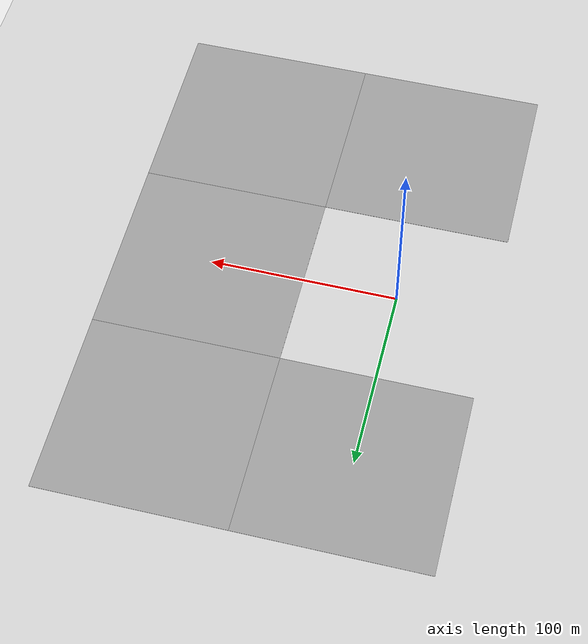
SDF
<sdf version="1.6">
 <world name="default">
  <model name="ground_plane">
   <static>1</static>
   <link name="link">
    <collision name="collision">
     <geometry><plane><normal>0 0 1</normal><size>100 100</size></plane></geometry>
     <surface>
      <contact><collide_bitmask>65535</collide_bitmask></contact>
      <friction><ode><mu>100</mu><mu2>50</mu2></ode></friction>
     </surface>
    </collision>
    <visual name="visual">
     <cast_shadows>0</cast_shadows>
     <geometry><plane><normal>0 0 1</normal><size>100 100</size></plane></geometry>
     <material>
      <script><uri>file://media/materials/scripts/gazebo.material</uri><name>Gazebo/Grey</name></script>
     </material>
    </visual>
   </link>
  </model>
  <model name="ground_plane_0">
   <static>1</static>
   <link name="link">
    <collision name="collision">
     <geometry><plane><normal>0 0 1</normal><size>100 100</size></plane></geometry>
     <surface>
      <contact><collide_bitmask>65535</collide_bitmask></contact>
      <friction><ode><mu>100</mu><mu2>50</mu2></ode></friction>
     </surface>
    </collision>
    <visual name="visual">
     <cast_shadows>0</cast_shadows>
     <geometry><plane><normal>0 0 1</normal><size>100 100</size></plane></geometry>
     <material>
      <script><uri>file://media/materials/scripts/gazebo.material</uri><name>Gazebo/Grey</name></script>
     </material>
    </visual>
   </link>
   <pose>0 -100 0 0 -0 0</pose>
  </model>
  <model name="ground_plane_1">
   <static>1</static>
   <link name="link">
    <collision name="collision">
     <geometry><plane><normal>0 0 1</normal><size>100 100</size></plane></geometry>
     <surface>
      <contact><collide_bitmask>65535</collide_bitmask></contact>
      <friction><ode><mu>100</mu><mu2>50</mu2></ode></friction>
     </surface>
    </collision>
    <visual name="visual">
     <cast_shadows>0</cast_shadows>
     <geometry><plane><normal>0 0 1</normal><size>100 100</size></plane></geometry>
     <material>
      <script><uri>file://media/materials/scripts/gazebo.material</uri><name>Gazebo/Grey</name></script>
     </material>
    </visual>
   </link>
   <pose>100 0 0 0 -0 0</pose>
  </model>
  <model name="ground_plane_2">
   <static>1</static>
   <link name="link">
    <collision name="collision">
     <geometry><plane><normal>0 0 1</normal><size>100 100</size></plane></geometry>
     <surface>
      <contact><collide_bitmask>65535</collide_bitmask></contact>
      <friction><ode><mu>100</mu><mu2>50</mu2></ode></friction>
     </surface>
    </collision>
    <visual name="visual">
     <cast_shadows>0</cast_shadows>
     <geometry><plane><normal>0 0 1</normal><size>100 100</size></plane></geometry>
     <material>
      <script><uri>file://media/materials/scripts/gazebo.material</uri><name>Gazebo/Grey</name></script>
     </material>
    </visual>
   </link>
   <pose>100 -100 0 0 -0 0</pose>
  </model>
  <model name="ground_plane_6">
   <static>1</static>
   <link name="link">
    <collision name="collision">
     <geometry><plane><normal>0 0 1</normal><size>100 100</size></plane></geometry>
     <surface>
      <contact><collide_bitmask>65535</collide_bitmask></contact>
      <friction><ode><mu>100</mu><mu2>50</mu2></ode></friction>
     </surface>
    </collision>
    <visual name="visual">
     <cast_shadows>0</cast_shadows>
     <geometry><plane><normal>0 0 1</normal><size>100 100</size></plane></geometry>
     <material>
      <script><uri>file://media/materials/scripts/gazebo.material</uri><name>Gazebo/Grey</name></script>
     </material>
    </visual>
   </link>
   <pose>0 100 0 0 -0 0</pose>
  </model>
  <model name="ground_plane_7">
   <static>1</static>
   <link name="link">
    <collision name="collision">
     <geometry><plane><normal>0 0 1</normal><size>100 100</size></plane></geometry>
     <surface>
      <contact><collide_bitmask>65535</collide_bitmask></contact>
      <friction><ode><mu>100</mu><mu2>50</mu2></ode></friction>
     </surface>
    </collision>
    <visual name="visual">
     <cast_shadows>0</cast_shadows>
     <geometry><plane><normal>0 0 1</normal><size>100 100</size></plane></geometry>
     <material>
      <script><uri>file://media/materials/scripts/gazebo.material</uri><name>Gazebo/Grey</name></script>
     </material>
    </visual>
   </link>
   <pose>100 100 0 0 -0 0</pose>
  </model>
 </world>
</sdf>
